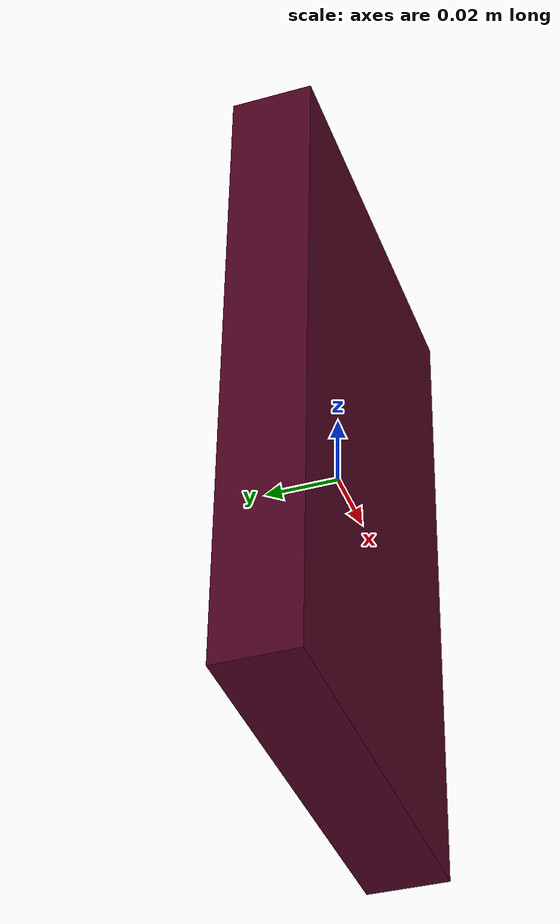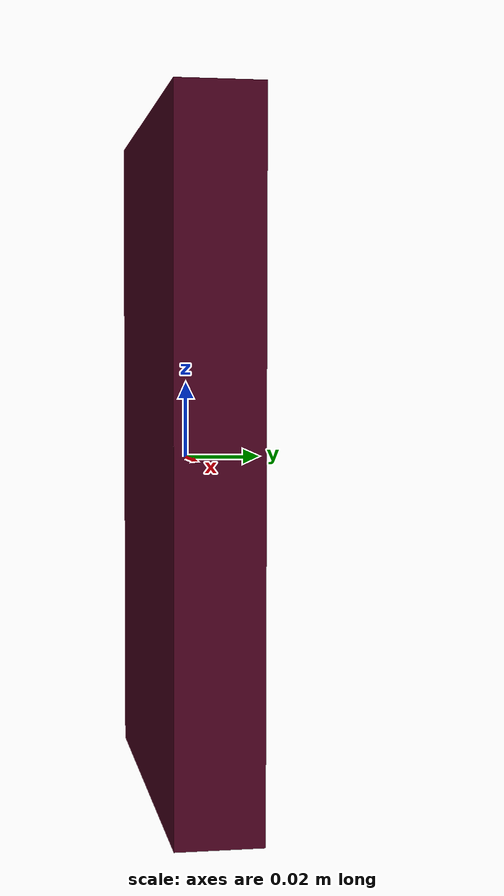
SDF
<?xml version="1.0"?>
<sdf version='1.6'>
<model name="tall_box">
  <link name="base_link">
    <inertial>
      <pose frame=''>0 0 0 0 0 0 </pose>
      <mass>0.55</mass>
        <inertia>
          <ixx>1.17e-5</ixx>
          <ixy>0</ixy>
          <ixz>0</ixz>
          <iyy>1.9e-5</iyy>
          <iyz>0</iyz>
          <izz>1.9e-5</izz>
        </inertia>
    </inertial>
    <visual name='base_link'>
      <pose frame=''>0 0 0 0 0 0</pose>
      <geometry>
        <box>
          <size>0.11 0.022 0.18</size>
        </box>
      </geometry>
      <material>
        <diffuse>0.31 0.01 0.13 1.0</diffuse>
      </material>
    </visual>

    <collision name='box_collision'>
      <pose>0 0 0 0 0 0</pose>
      <geometry>
        <box>
          <size>0.10 0.021 0.17</size>
        </box>
      </geometry>
      <material>
        <diffuse>0 1 0 1.0</diffuse>
      </material>
    </collision>

   </link>
</model>
</sdf>
